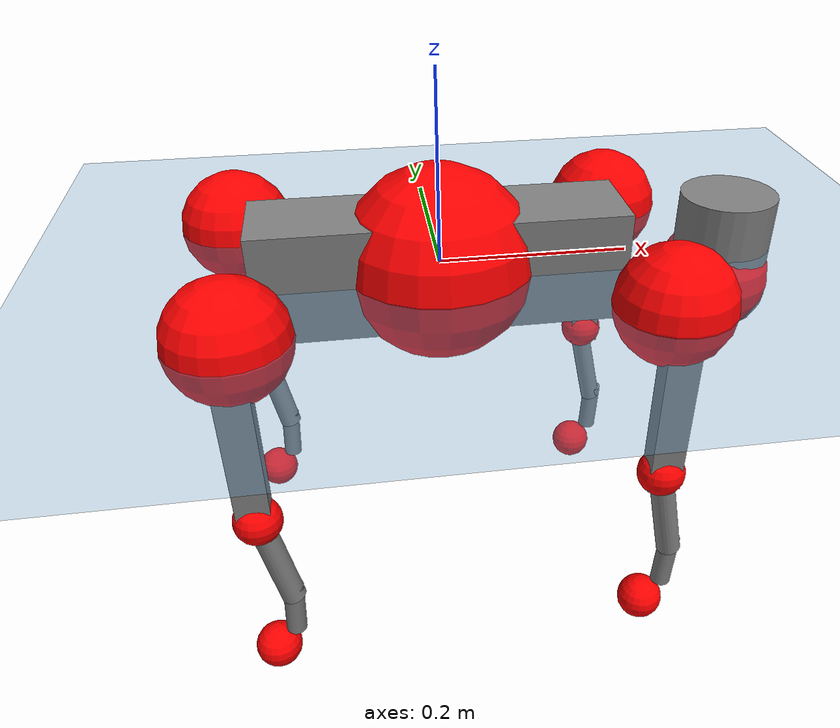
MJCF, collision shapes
<mujoco model="go2">
  <compiler angle="radian" assetdir="assets" balanceinertia="true" inertiafromgeom="false"/>

  <option timestep="0.005" density="1.2" viscosity="2e-05"/>

  <size nkey="1"/>

  <visual>
    <quality shadowsize="8192"/>
    <map shadowclip="0.5"/>
  </visual>

  <default>
    <default class="/">
      <geom contype="0" conaffinity="0" group="1" solref="-1000 -80"/>
      <site size="0.01 0.005 0.005" group="5"/>
      <general forcelimited="true" biastype="affine" gainprm="20" biasprm="0 -20 -0.5"/>
      <default class="go2">
        <joint armature="0.01" damping="0.01" frictionloss="0.2"/>
        <geom condim="1" margin="0.001"/>
        <default class="visual">
          <geom type="mesh" group="2"/>
        </default>
        <default class="collision">
          <geom group="3"/>
          <default class="foot">
            <geom size="0.022 0 0" condim="6" priority="1" friction="0.8 0.02 0.01" solimp="0.015 1 0.022"/>
          </default>
        </default>
        <default class="reward_collision_sphere">
          <geom group="5" rgba="1 0 0 1"/>
        </default>
      </default>
    </default>
  </default>

  <asset>
    <texture type="skybox" colorspace="auto" name="//unnamed_texture_0" builtin="gradient" rgb1="0.95 0.95 0.95" rgb2="0.95 0.95 0.95" width="100" height="600"/>
    <texture type="2d" colorspace="auto" name="texplane" builtin="checker" rgb1="0.345 0.575 0.748" rgb2="0.345 0.575 0.748" markrgb="1 1 1" width="512" height="512"/>
    <material name="MatPlane" class="/" texture="texplane" texuniform="true" texrepeat="2 2" specular="0.9"/>
    <material name="metal" class="/" rgba="0.9 0.95 0.95 1"/>
    <material name="black" class="/" rgba="0 0 0 1"/>
    <material name="white" class="/"/>
    <material name="gray" class="/" rgba="0.671705 0.692426 0.77427 1"/>
    <mesh name="base_0" class="/" file="base_0.obj"/>
    <mesh name="base_1" class="/" file="base_1.obj"/>
    <mesh name="base_2" class="/" file="base_2.obj"/>
    <mesh name="base_3" class="/" file="base_3.obj"/>
    <mesh name="base_4" class="/" file="base_4.obj"/>
    <mesh name="hip_0" class="/" file="hip_0.obj"/>
    <mesh name="hip_1" class="/" file="hip_1.obj"/>
    <mesh name="thigh_0" class="/" file="thigh_0.obj"/>
    <mesh name="thigh_1" class="/" file="thigh_1.obj"/>
    <mesh name="thigh_mirror_0" class="/" file="thigh_mirror_0.obj"/>
    <mesh name="thigh_mirror_1" class="/" file="thigh_mirror_1.obj"/>
    <mesh name="calf_0" class="/" file="calf_0.obj"/>
    <mesh name="calf_1" class="/" file="calf_1.obj"/>
    <mesh name="calf_mirror_0" class="/" file="calf_mirror_0.obj"/>
    <mesh name="calf_mirror_1" class="/" file="calf_mirror_1.obj"/>
    <mesh name="foot" class="/" file="foot.obj"/>
  </asset>

  <worldbody>
    <geom name="floor" class="/" size="100 100 0.125" type="plane" group="0" material="MatPlane"/>
    <light name="toplight_shadow" class="/" pos="0 0 5" dir="0.0990148 0.0990148 -0.990148" type="directional" ambient="0.04 0.04 0.04" diffuse="0.55 0.55 0.55" specular="0.12 0.12 0.12"/>
    <light name="toplight_fill" class="/" pos="0 0 5" dir="0.0990148 0.0990148 -0.990148" type="directional" castshadow="false" ambient="0.04 0.04 0.04" diffuse="0.3 0.3 0.3" specular="0.08 0.08 0.08"/>
    <body name="trunk" childclass="go2" pos="-0.000728236 0.00268947 8.8256e-05" quat="0.999999 -0.000783961 0.000489046 0.000635307">
      <inertial pos="0.0230398 -0.000592598 -0.00488501" quat="0.00320482 0.713587 0.00908274 0.7005" mass="7.60117" diaginertia="0.164163 0.147086 0.0142573"/>
      <joint name="//unnamed_joint_0" type="free" armature="0" damping="0" frictionloss="0"/>
      <geom name="//unnamed_geom_1" class="visual" material="black" mesh="base_0"/>
      <geom name="//unnamed_geom_2" class="visual" material="black" mesh="base_1"/>
      <geom name="//unnamed_geom_3" class="visual" material="black" mesh="base_2"/>
      <geom name="//unnamed_geom_4" class="visual" material="white" mesh="base_3"/>
      <geom name="//unnamed_geom_5" class="visual" material="gray" mesh="base_4"/>
      <geom name="trunk_1" class="collision" size="0.192513 0.0478468 0.0583372" type="box"/>
      <geom name="trunk_2" class="collision" size="0.051173 0.0460557" pos="0.310986 0 0.008992" type="cylinder"/>
      <geom name="trunk_3" class="collision" size="0.0481026" pos="0.319716 0 -0.053952"/>
      <geom name="//unnamed_geom_9" class="reward_collision_sphere" size="0.102346"/>
      <geom name="//unnamed_geom_10" class="reward_collision_sphere" size="0.0614076" pos="0.30553 0 -0.040464"/>
      <site name="imu" pos="-0.0156906 -0.00534221 0.0477635" size="0.0102346"/>
      <camera name="track" pos="0 -2.16 0" quat="0.707107 0.707107 0 0" mode="trackcom"/>
      <camera name="ego_camera" pos="0.340448 0 0.040464" quat="-0.5 -0.5 0.5 0.5"/>
      <body name="FL_hip" pos="0.210473 0.0505321 -0.00111678" quat="1 -0.000122776 -9.66809e-05 5.43057e-05">
        <inertial pos="-0.00453403 -0.00027116 0.000595508" quat="0.498574 0.499063 0.505276 0.497048" mass="0.714988" diaginertia="0.00134663 0.000871724 0.000281859"/>
        <joint name="FL_hip_joint" pos="0 0 0" axis="0.999864 0.010327 0.0128758" stiffness="0.0120534" range="-1.04877 1.05016" armature="0.0112479" damping="0.0157732" frictionloss="0.230101"/>
        <geom name="//unnamed_geom_11" class="visual" material="metal" mesh="hip_0"/>
        <geom name="//unnamed_geom_12" class="visual" material="gray" mesh="hip_1"/>
        <geom name="//unnamed_geom_13" class="collision" size="0.0470792 0.0204692" pos="0 0.0864001 0" quat="0.707107 0.707107 0 0" type="cylinder"/>
        <geom name="//unnamed_geom_14" class="reward_collision_sphere" size="0.0614076" pos="0 0.0756001 0"/>
        <body name="FL_thigh" pos="-0.00190968 0.103817 -0.00112508" quat="0.999999 0.000606912 -0.00116958 -7.3406e-05">
          <inertial pos="-0.0044635 -0.0241361 -0.0270177" quat="0.83066 0.075921 -0.0110038 0.55147" mass="1.186" diaginertia="0.0088004 0.00829907 0.000504832"/>
          <joint name="FL_thigh_joint" pos="0 0 0" axis="0.00317374 0.999935 -0.0109517" range="-1.51713 3.484" armature="0.010284" damping="0" frictionloss="0.183328"/>
          <geom name="//unnamed_geom_15" class="visual" material="metal" mesh="thigh_0"/>
          <geom name="//unnamed_geom_16" class="visual" material="gray" mesh="thigh_1"/>
          <geom name="//unnamed_geom_17" class="collision" size="0.108999 0.0125374 0.0173988" pos="0 0 -0.0957648" quat="0.707107 0 0.707107 0" type="box"/>
          <body name="FL_calf" pos="-0.000833305 0.00243041 -0.191593" quat="1 -0.000235207 0.000219765 -0.000541356">
            <inertial pos="0.00926342 -0.00252131 -0.125845" quat="0.706257 0.00370767 -0.00183987 0.707944" mass="0.271337" diaginertia="0.00233804 0.00219301 3.20229e-05"/>
            <joint name="FL_calf_joint" pos="0 0 0" axis="0.00249002 0.999975 -0.00655389" stiffness="0.00958095" range="-2.7271 -0.862485" armature="0.00992286" damping="0.00199561" frictionloss="0.208587"/>
            <geom name="//unnamed_geom_18" class="visual" material="gray" mesh="calf_0"/>
            <geom name="//unnamed_geom_19" class="visual" material="black" mesh="calf_1"/>
            <geom name="FL_calf0" class="collision" size="0.0122815 0.0614076" pos="0.00872943 0 -0.053952" quat="0.994493 0 -0.104807 0" type="cylinder"/>
            <geom name="//unnamed_geom_21" class="collision" size="0.0112581 0.0332625" pos="0.0218236 0 -0.133082" quat="0.999688 0 0.0249974 0" type="cylinder"/>
            <geom name="//unnamed_geom_22" class="visual" pos="0 0 -0.19153" quat="1 0 0 0" material="black" mesh="foot"/>
            <geom name="FL_foot" class="foot" size="0.0224423" pos="-0.00218236 0 -0.19153"/>
            <geom name="//unnamed_geom_24" class="reward_collision_sphere" size="0.0255865"/>
            <geom name="//unnamed_geom_25" class="reward_collision_sphere" size="0.0255865" pos="-0.00218236 0 -0.19153"/>
            <site name="FL_foot" class="foot" pos="-0.00218236 0 -0.19153" size="0.0102346"/>
          </body>
        </body>
      </body>
      <body name="FR_hip" pos="0.21347 -0.0526534 0.000859095" quat="1 0.00017491 2.31646e-05 -5.70994e-05">
        <inertial pos="-0.00810978 0.000472881 0.0019419" quat="0.49419 0.504418 0.49642 0.504883" mass="0.721692" diaginertia="0.00134398 0.00084011 0.000276283"/>
        <joint name="FR_hip_joint" pos="0 0 0" axis="0.999995 0.000491752 -0.00304154" stiffness="0.00559353" range="-1.02159 1.06096" armature="0.0100558" damping="0.00673704" frictionloss="0.204772"/>
        <geom name="//unnamed_geom_26" class="visual" pos="0 1.57506e-09 6.75578e-08" quat="4.63268e-05 1 0 0" material="metal" mesh="hip_0"/>
        <geom name="//unnamed_geom_27" class="visual" pos="0 2.55337e-09 -1.67096e-07" quat="4.63268e-05 1 0 0" material="gray" mesh="hip_1"/>
        <geom name="//unnamed_geom_28" class="collision" size="0.0470792 0.0204692" pos="0 -0.0864001 0" quat="0.707107 0.707107 0 0" type="cylinder"/>
        <geom name="//unnamed_geom_29" class="reward_collision_sphere" size="0.0614076" pos="0 -0.0756001 0"/>
        <body name="FR_thigh" pos="0.00105774 -0.10474 0.00234975" quat="1 -0.000138 -3.07498e-05 8.21362e-05">
          <inertial pos="-0.00643359 0.0209877 -0.0268938" quat="0.550061 -0.019366 0.0857739 0.830482" mass="1.27293" diaginertia="0.00924307 0.00902348 0.000535535"/>
          <joint name="FR_thigh_joint" pos="0 0 0" axis="-0.00483347 -0.999984 -0.00296636" stiffness="0.0117515" range="-3.51017 1.6199" armature="0.00885437" damping="0.0120361" frictionloss="0.223464"/>
          <geom name="//unnamed_geom_30" class="visual" material="metal" mesh="thigh_mirror_0"/>
          <geom name="//unnamed_geom_31" class="visual" material="gray" mesh="thigh_mirror_1"/>
          <geom name="//unnamed_geom_32" class="collision" size="0.108999 0.0125374 0.0173988" pos="0 0 -0.0957648" quat="0.707107 0 0.707107 0" type="box"/>
          <body name="FR_calf" pos="-6.28951e-05 0.00238281 -0.191228" quat="0.999999 -0.000208645 0.000875475 0.000706102">
            <inertial pos="0.00357268 -0.00095874 -0.127145" quat="0.703403 -0.0108961 -0.00365115 0.710699" mass="0.254707" diaginertia="0.00233575 0.00210825 2.98652e-05"/>
            <joint name="FR_calf_joint" pos="0 0 0" axis="-0.00878677 -0.99993 -0.00793789" range="0.870627 2.72456" armature="0.0108245" damping="0.00207544" frictionloss="0.199262"/>
            <geom name="//unnamed_geom_33" class="visual" material="gray" mesh="calf_mirror_0"/>
            <geom name="//unnamed_geom_34" class="visual" material="black" mesh="calf_mirror_1"/>
            <geom name="FR_calf0" class="collision" size="0.013305 0.0614076" pos="0.0109118 0 -0.053952" quat="0.995004 0 -0.0998334 0" type="cylinder"/>
            <geom name="//unnamed_geom_36" class="collision" size="0.0112581 0.0332625" pos="0.0218236 0 -0.133082" quat="0.999688 0 0.0249974 0" type="cylinder"/>
            <geom name="//unnamed_geom_37" class="visual" pos="0 0 -0.19153" quat="1 0 0 0" material="black" mesh="foot"/>
            <geom name="FR_foot" class="foot" size="0.0197444" pos="-0.00218236 0 -0.19153"/>
            <geom name="//unnamed_geom_39" class="reward_collision_sphere" size="0.0255865"/>
            <geom name="//unnamed_geom_40" class="reward_collision_sphere" size="0.0255865" pos="-0.00218236 0 -0.19153"/>
            <site name="FR_foot" class="foot" pos="-0.00218236 0 -0.19153" size="0.0102346"/>
          </body>
        </body>
      </body>
      <body name="RL_hip" pos="-0.214692 0.0499903 -0.00214893" quat="1 0.00050747 -5.14407e-05 0.000113748">
        <inertial pos="0.00429423 0.00498704 -0.000593223" quat="0.504957 0.49988 0.49695 0.498176" mass="0.707471" diaginertia="0.00133263 0.000884576 0.000284305"/>
        <joint name="RL_hip_joint" pos="0 0 0" axis="-0.999925 0.0111527 0.00500189" range="-1.02099 1.10053" armature="0.0103251" damping="0.00622858" frictionloss="0.177317"/>
        <geom name="//unnamed_geom_41" class="visual" pos="-1.67244e-09 0 -3.27837e-07" quat="4.63268e-05 0 1 0" material="metal" mesh="hip_0"/>
        <geom name="//unnamed_geom_42" class="visual" pos="-2.71123e-09 0 -2.90745e-07" quat="4.63268e-05 0 1 0" material="gray" mesh="hip_1"/>
        <geom name="//unnamed_geom_43" class="collision" size="0.0470792 0.0204692" pos="0 0.0864001 0" quat="0.707107 0.707107 0 0" type="cylinder"/>
        <geom name="//unnamed_geom_44" class="reward_collision_sphere" size="0.0614076" pos="0 0.0756001 0"/>
        <body name="RL_thigh" pos="0.00207413 0.105217 -4.80081e-05" quat="0.999999 -0.000955834 0.000193998 0.000977458">
          <inertial pos="-0.00210341 -0.0260253 -0.0299102" quat="0.828719 0.0832125 -0.0178674 0.553155" mass="1.283" diaginertia="0.009161 0.00866674 0.000541155"/>
          <joint name="RL_thigh_joint" pos="0 0 0" axis="-0.00371714 0.999991 -0.00212081" stiffness="0.00274891" range="-0.496167 4.57792" armature="0.0094789" damping="0.0130848" frictionloss="0.203848"/>
          <geom name="//unnamed_geom_45" class="visual" material="metal" mesh="thigh_0"/>
          <geom name="//unnamed_geom_46" class="visual" material="gray" mesh="thigh_1"/>
          <geom name="//unnamed_geom_47" class="collision" size="0.108999 0.0125374 0.0173988" pos="0 0 -0.0957648" quat="0.707107 0 0.707107 0" type="box"/>
          <body name="RL_calf" pos="-0.00143453 -0.000270308 -0.189435" quat="0.999999 0.000931795 0.000990022 -0.000138143">
            <inertial pos="0.00703383 -0.00125202 -0.130531" quat="0.71363 -0.00868583 -0.00252204 0.700464" mass="0.260276" diaginertia="0.00231413 0.00206615 3.06756e-05"/>
            <joint name="RL_calf_joint" pos="0 0 0" axis="0.00528951 0.999806 -0.0189854" range="-2.68217 -0.867977" armature="0.0113697" damping="0" frictionloss="0.199109"/>
            <geom name="//unnamed_geom_48" class="visual" material="gray" mesh="calf_0"/>
            <geom name="//unnamed_geom_49" class="visual" material="black" mesh="calf_1"/>
            <geom name="RL_calf0" class="collision" size="0.013305 0.0614076" pos="0.0109118 0 -0.053952" quat="0.995004 0 -0.0998334 0" type="cylinder"/>
            <geom name="//unnamed_geom_51" class="collision" size="0.0112581 0.0332625" pos="0.0218236 0 -0.133082" quat="0.999688 0 0.0249974 0" type="cylinder"/>
            <geom name="//unnamed_geom_52" class="visual" pos="0 0 -0.19153" quat="1 0 0 0" material="black" mesh="foot"/>
            <geom name="RL_foot" class="foot" size="0.0220646" pos="-0.00218236 0 -0.19153"/>
            <geom name="//unnamed_geom_54" class="reward_collision_sphere" size="0.0255865"/>
            <geom name="//unnamed_geom_55" class="reward_collision_sphere" size="0.0255865" pos="-0.00218236 0 -0.19153"/>
            <site name="RL_foot" class="foot" pos="-0.00218236 0 -0.19153" size="0.0102346"/>
          </body>
        </body>
      </body>
      <body name="RR_hip" pos="-0.208759 -0.0479828 -0.00339768" quat="0.999999 0.0010143 -0.000622922 -0.000614143">
        <inertial pos="0.00704313 0.000301421 -0.000808883" quat="0.504325 0.497774 0.49099 0.50676" mass="0.711841" diaginertia="0.00137392 0.000874595 0.000282485"/>
        <joint name="RR_hip_joint" pos="0 0 0" axis="-0.99994 0.00381634 -0.010242" range="-1.04232 1.1016" armature="0.00891698" damping="0.019213" frictionloss="0.195588"/>
        <geom name="//unnamed_geom_56" class="visual" pos="1.67206e-09 1.57506e-09 -3.95395e-07" quat="2.14617e-09 4.63268e-05 4.63268e-05 -1" material="metal" mesh="hip_0"/>
        <geom name="//unnamed_geom_57" class="visual" pos="2.71219e-09 2.55337e-09 -1.23649e-07" quat="2.14617e-09 4.63268e-05 4.63268e-05 -1" material="gray" mesh="hip_1"/>
        <geom name="//unnamed_geom_58" class="collision" size="0.0470792 0.0204692" pos="0 -0.0864001 0" quat="0.707107 0.707107 0 0" type="cylinder"/>
        <geom name="//unnamed_geom_59" class="reward_collision_sphere" size="0.0614076" pos="0 -0.0756001 0"/>
        <body name="RR_thigh" pos="-0.00054429 -0.105914 -0.00162229" quat="0.999999 0.00118062 -1.61089e-05 -0.000822793">
          <inertial pos="-0.00169265 0.0243937 -0.0269313" quat="0.557252 -0.0284166 0.092986 0.824631" mass="1.18729" diaginertia="0.00918005 0.00849856 0.00049258"/>
          <joint name="RR_thigh_joint" pos="0 0 0" axis="0.0195298 -0.999788 -0.0064873" range="-4.54835 0.577473" armature="0.0102106" damping="0.0126181" frictionloss="0.179756"/>
          <geom name="//unnamed_geom_60" class="visual" material="metal" mesh="thigh_mirror_0"/>
          <geom name="//unnamed_geom_61" class="visual" material="gray" mesh="thigh_mirror_1"/>
          <geom name="//unnamed_geom_62" class="collision" size="0.108999 0.0125374 0.0173988" pos="0 0 -0.0957648" quat="0.707107 0 0.707107 0" type="box"/>
          <body name="RR_calf" pos="0.00193779 -5.01001e-05 -0.193611" quat="1 -0.000165932 9.75495e-05 -0.000388502">
            <inertial pos="0.00743089 0.00297046 -0.128867" quat="0.704581 -0.00411165 0.00151792 0.70961" mass="0.257179" diaginertia="0.00225108 0.00213127 3.11858e-05"/>
            <joint name="RR_calf_joint" pos="0 0 0" axis="0.00281547 -0.999994 0.00179522" range="0.78347 2.69126" armature="0.0104409" damping="0.0222802" frictionloss="0.186373"/>
            <geom name="//unnamed_geom_63" class="visual" material="gray" mesh="calf_mirror_0"/>
            <geom name="//unnamed_geom_64" class="visual" material="black" mesh="calf_mirror_1"/>
            <geom name="RR_calf0" class="collision" size="0.013305 0.0614076" pos="0.0109118 0 -0.053952" quat="0.995004 0 -0.0998334 0" type="cylinder"/>
            <geom name="//unnamed_geom_66" class="collision" size="0.0112581 0.0332625" pos="0.0218236 0 -0.133082" quat="0.999688 0 0.0249974 0" type="cylinder"/>
            <geom name="//unnamed_geom_67" class="visual" pos="0 0 -0.19153" quat="1 0 0 0" material="black" mesh="foot"/>
            <geom name="RR_foot" class="foot" size="0.0205073" pos="-0.00218236 0 -0.19153"/>
            <geom name="//unnamed_geom_69" class="reward_collision_sphere" size="0.0255865"/>
            <geom name="//unnamed_geom_70" class="reward_collision_sphere" size="0.0255865" pos="-0.00218236 0 -0.19153"/>
            <site name="RR_foot" class="foot" pos="-0.00218236 0 -0.19153" size="0.0102346"/>
          </body>
        </body>
      </body>
    </body>
  </worldbody>

  <contact>
    <pair class="/" geom1="floor" geom2="FL_foot" name="//unnamed_contact_0"/>
    <pair class="/" geom1="floor" geom2="FR_foot" name="//unnamed_contact_1"/>
    <pair class="/" geom1="floor" geom2="RL_foot" name="//unnamed_contact_2"/>
    <pair class="/" geom1="floor" geom2="RR_foot" name="//unnamed_contact_3"/>
  </contact>

  <actuator>
    <general name="FL_hip" class="/" joint="FL_hip_joint" forcerange="-24.4809 24.4809" gainprm="20.5983" biasprm="0 -20.5983 -0.544163"/>
    <general name="FL_thigh" class="/" joint="FL_thigh_joint" forcerange="-24.3314 24.3314" gainprm="20.5983" biasprm="0 -20.5983 -0.544163"/>
    <general name="FL_calf" class="/" joint="FL_calf_joint" forcerange="-50.9457 50.9457" gainprm="20.5983" biasprm="0 -20.5983 -0.544163"/>
    <general name="FR_hip" class="/" joint="FR_hip_joint" forcerange="-24.2323 24.2323" gainprm="20.5983" biasprm="0 -20.5983 -0.544163"/>
    <general name="FR_thigh" class="/" joint="FR_thigh_joint" forcerange="-24.8 24.8" gainprm="20.5983" biasprm="0 -20.5983 -0.544163"/>
    <general name="FR_calf" class="/" joint="FR_calf_joint" forcerange="-49.0039 49.0039" gainprm="20.5983" biasprm="0 -20.5983 -0.544163"/>
    <general name="RL_hip" class="/" joint="RL_hip_joint" forcerange="-24.0351 24.0351" gainprm="20.5983" biasprm="0 -20.5983 -0.544163"/>
    <general name="RL_thigh" class="/" joint="RL_thigh_joint" forcerange="-25.8552 25.8552" gainprm="20.5983" biasprm="0 -20.5983 -0.544163"/>
    <general name="RL_calf" class="/" joint="RL_calf_joint" forcerange="-42.4456 42.4456" gainprm="20.5983" biasprm="0 -20.5983 -0.544163"/>
    <general name="RR_hip" class="/" joint="RR_hip_joint" forcerange="-24.568 24.568" gainprm="20.5983" biasprm="0 -20.5983 -0.544163"/>
    <general name="RR_thigh" class="/" joint="RR_thigh_joint" forcerange="-26.5867 26.5867" gainprm="20.5983" biasprm="0 -20.5983 -0.544163"/>
    <general name="RR_calf" class="/" joint="RR_calf_joint" forcerange="-51.307 51.307" gainprm="20.5983" biasprm="0 -20.5983 -0.544163"/>
  </actuator>

  <sensor>
    <gyro site="imu" name="imu_angular_velocity"/>
    <velocimeter site="imu" name="imu_linear_velocity"/>
    <framelinvel objtype="site" objname="FL_foot" name="FL_foot_global_linear_velocity"/>
    <framelinvel objtype="site" objname="FR_foot" name="FR_foot_global_linear_velocity"/>
    <framelinvel objtype="site" objname="RL_foot" name="RL_foot_global_linear_velocity"/>
    <framelinvel objtype="site" objname="RR_foot" name="RR_foot_global_linear_velocity"/>
  </sensor>

  <keyframe>
    <key name="home" qpos="0 0 0.325 1 0 0 0 0.1 0.8 -1.5 -0.1 -0.8 1.5 -0.1 0.8 -1.5 0.1 -0.8 1.5"/>
  </keyframe>
</mujoco>
